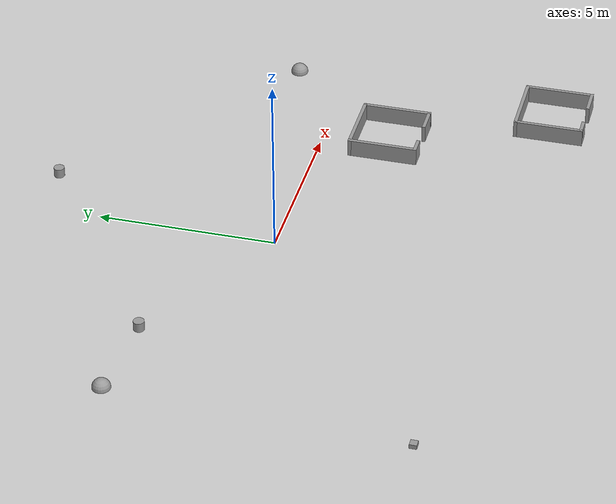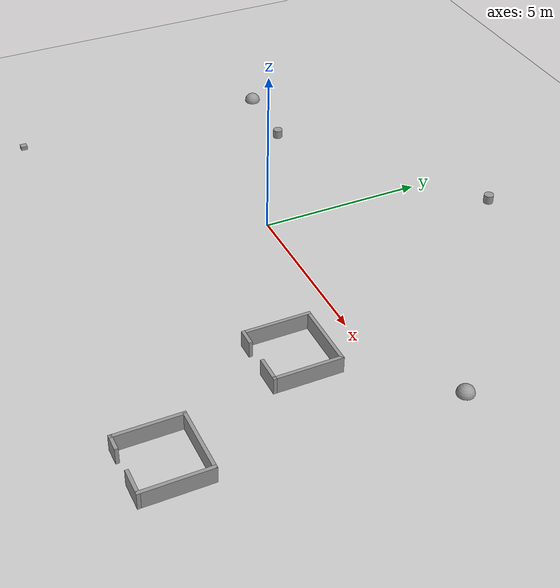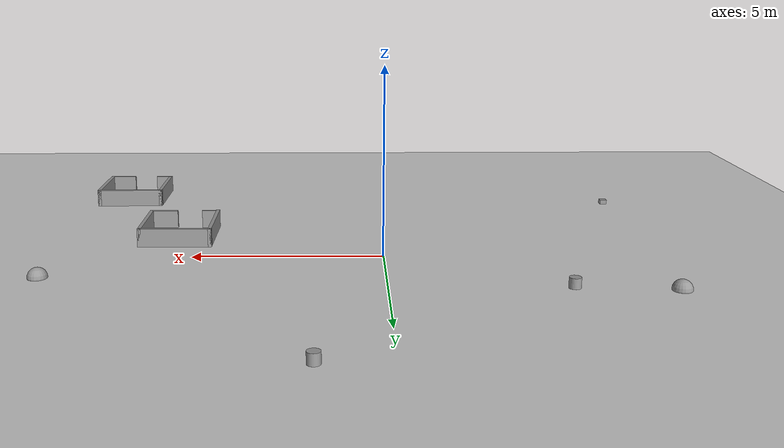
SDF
<sdf version="1.6">
 <world name="default">
  <model name="ground_plane">
   <static>1</static>
   <link name="link">
    <collision name="collision">
     <geometry><plane><normal>0 0 1</normal><size>20 20</size></plane></geometry>
     <surface>
      <contact><collide_bitmask>65535</collide_bitmask></contact>
      <friction><ode><mu>100</mu><mu2>50</mu2></ode></friction>
     </surface>
    </collision>
    <visual name="visual">
     <cast_shadows>0</cast_shadows>
     <geometry><plane><normal>0 0 1</normal><size>20 20</size></plane></geometry>
     <material>
      <script><uri>file://media/materials/scripts/gazebo.material</uri><name>Gazebo/Grey</name></script>
     </material>
    </visual>
   </link>
  </model>
  <model name="shape5">
   <pose>5.6 -1.9 0 0 -0 0</pose>
   <link name="Wall_20">
    <collision name="Wall_20_Collision">
     <geometry><box><size>2 0.1 0.5</size></box></geometry>
     <pose>0 0 0.25 0 -0 0</pose>
    </collision>
    <visual name="Wall_20_Visual">
     <pose>0 0 0.25 0 -0 0</pose>
     <geometry><box><size>2 0.1 0.5</size></box></geometry>
     <material>
      <script><uri>file://media/materials/scripts/gazebo.material</uri><name>Gazebo/Grey</name></script>
      <ambient>1 1 1 1</ambient>
     </material>
     <meta><layer>0</layer></meta>
    </visual>
    <pose>-0 0.95 0 0 -0 0</pose>
   </link>
   <link name="Wall_21">
    <collision name="Wall_21_Collision">
     <geometry><box><size>2 0.1 0.5</size></box></geometry>
     <pose>0 0 0.25 0 -0 0</pose>
    </collision>
    <visual name="Wall_21_Visual">
     <pose>0 0 0.25 0 -0 0</pose>
     <geometry><box><size>2 0.1 0.5</size></box></geometry>
     <material>
      <script><uri>file://media/materials/scripts/gazebo.material</uri><name>Gazebo/Grey</name></script>
      <ambient>1 1 1 1</ambient>
     </material>
     <meta><layer>0</layer></meta>
    </visual>
    <pose>0.95 0 0 0 -0 -1.5708</pose>
   </link>
   <link name="Wall_22">
    <collision name="Wall_22_Collision">
     <geometry><box><size>0.8 0.1 0.5</size></box></geometry>
     <pose>0 0 0.25 0 -0 0</pose>
    </collision>
    <visual name="Wall_22_Visual">
     <pose>0 0 0.25 0 -0 0</pose>
     <geometry><box><size>0.8 0.1 0.5</size></box></geometry>
     <material>
      <script><uri>file://media/materials/scripts/gazebo.material</uri><name>Gazebo/Grey</name></script>
      <ambient>1 1 1 1</ambient>
     </material>
     <meta><layer>0</layer></meta>
    </visual>
    <pose>0.6 -0.95 0 0 -0 3.14159</pose>
   </link>
   <link name="Wall_24">
    <collision name="Wall_24_Collision">
     <geometry><box><size>2 0.1 0.5</size></box></geometry>
     <pose>0 0 0.25 0 -0 0</pose>
    </collision>
    <visual name="Wall_24_Visual">
     <pose>0 0 0.25 0 -0 0</pose>
     <geometry><box><size>2 0.1 0.5</size></box></geometry>
     <material>
      <script><uri>file://media/materials/scripts/gazebo.material</uri><name>Gazebo/Grey</name></script>
      <ambient>1 1 1 1</ambient>
     </material>
     <meta><layer>0</layer></meta>
    </visual>
    <pose>-0.95 0 0 0 -0 -1.5708</pose>
   </link>
   <link name="Wall_25">
    <collision name="Wall_25_Collision">
     <geometry><box><size>0.5 0.1 0.5</size></box></geometry>
     <pose>0 0 0.25 0 -0 0</pose>
    </collision>
    <visual name="Wall_25_Visual">
     <pose>0 0 0.25 0 -0 0</pose>
     <geometry><box><size>0.5 0.1 0.5</size></box></geometry>
     <material>
      <script><uri>file://media/materials/scripts/gazebo.material</uri><name>Gazebo/Grey</name></script>
      <ambient>1 1 1 1</ambient>
     </material>
     <meta><layer>0</layer></meta>
    </visual>
    <pose>-0.75 -0.95 0 0 -0 0</pose>
   </link>
   <static>1</static>
  </model>
  <model name="ball_d=50">
   <link name="link_1">
    <inertial>
     <mass>1</mass>
     <inertia><ixx>0.1</ixx><ixy>0</ixy><ixz>0</ixz><iyy>0.1</iyy><iyz>0</iyz><izz>0.1</izz></inertia>
    </inertial>
    <pose>-6.95 2.65 0 0 -0 0</pose>
    <visual name="visual">
     <geometry><sphere><radius>0.25</radius></sphere></geometry>
     <material>
      <lighting>1</lighting>
      <script><uri>file://media/materials/scripts/gazebo.material</uri><name>Gazebo/Grey</name></script>
      <shader type="vertex"><normal_map>__default__</normal_map></shader>
      <ambient>0.3 0.3 0.3 1</ambient>
      <diffuse>0.7 0.7 0.7 1</diffuse>
      <specular>0.01 0.01 0.01 1</specular>
      <emissive>0 0 0 1</emissive>
     </material>
    </visual>
    <collision name="collision">
     <geometry><sphere><radius>0.25</radius></sphere></geometry>
     <surface>
      <friction>
       <ode><mu>1</mu><mu2>1</mu2><fdir1>0 0 0</fdir1><slip1>0</slip1><slip2>0</slip2></ode>
       <torsional>
        <coefficient>1</coefficient>
        <patch_radius>0</patch_radius>
        <surface_radius>0</surface_radius>
        <use_patch_radius>1</use_patch_radius>
        <ode><slip>0</slip></ode>
       </torsional>
      </friction>
      <bounce><restitution_coefficient>0</restitution_coefficient><threshold>1e+06</threshold></bounce>
      <contact>
       <collide_without_contact>0</collide_without_contact>
       <collide_without_contact_bitmask>1</collide_without_contact_bitmask>
       <collide_bitmask>1</collide_bitmask>
       <ode>
        <soft_cfm>0</soft_cfm>
        <soft_erp>0.2</soft_erp>
        <kp>1e+13</kp>
        <kd>1</kd>
        <max_vel>0.01</max_vel>
        <min_depth>0</min_depth>
       </ode>
       <bullet>
        <split_impulse>1</split_impulse>
        <split_impulse_penetration_threshold>-0.01</split_impulse_penetration_threshold>
        <soft_cfm>0</soft_cfm>
        <soft_erp>0.2</soft_erp>
        <kp>1e+13</kp>
        <kd>1</kd>
       </bullet>
      </contact>
     </surface>
    </collision>
   </link>
   <static>0</static>
  </model>
  <model name="box_d=20">
   <link name="link_2">
    <inertial>
     <mass>1</mass>
     <inertia>
      <ixx>0.166667</ixx>
      <ixy>0</ixy>
      <ixz>0</ixz>
      <iyy>0.166667</iyy>
      <iyz>0</iyz>
      <izz>0.166667</izz>
     </inertia>
    </inertial>
    <pose>-7.2 -5.5 0 0 -0 0</pose>
    <visual name="visual">
     <geometry><box><size>0.2 0.2 0.2</size></box></geometry>
     <material>
      <lighting>1</lighting>
      <script><uri>file://media/materials/scripts/gazebo.material</uri><name>Gazebo/Grey</name></script>
      <shader type="vertex"><normal_map>__default__</normal_map></shader>
      <ambient>0.3 0.3 0.3 1</ambient>
      <diffuse>0.7 0.7 0.7 1</diffuse>
      <specular>0.01 0.01 0.01 1</specular>
      <emissive>0 0 0 1</emissive>
     </material>
    </visual>
    <collision name="collision">
     <geometry><box><size>0.2 0.2 0.2</size></box></geometry>
     <surface>
      <friction>
       <ode><mu>1</mu><mu2>1</mu2><fdir1>0 0 0</fdir1><slip1>0</slip1><slip2>0</slip2></ode>
       <torsional>
        <coefficient>1</coefficient>
        <patch_radius>0</patch_radius>
        <surface_radius>0</surface_radius>
        <use_patch_radius>1</use_patch_radius>
        <ode><slip>0</slip></ode>
       </torsional>
      </friction>
      <bounce><restitution_coefficient>0</restitution_coefficient><threshold>1e+06</threshold></bounce>
      <contact>
       <collide_without_contact>0</collide_without_contact>
       <collide_without_contact_bitmask>1</collide_without_contact_bitmask>
       <collide_bitmask>1</collide_bitmask>
       <ode>
        <soft_cfm>0</soft_cfm>
        <soft_erp>0.2</soft_erp>
        <kp>1e+13</kp>
        <kd>1</kd>
        <max_vel>0.01</max_vel>
        <min_depth>0</min_depth>
       </ode>
       <bullet>
        <split_impulse>1</split_impulse>
        <split_impulse_penetration_threshold>-0.01</split_impulse_penetration_threshold>
        <soft_cfm>0</soft_cfm>
        <soft_erp>0.2</soft_erp>
        <kp>1e+13</kp>
        <kd>1</kd>
       </bullet>
      </contact>
     </surface>
    </collision>
   </link>
   <static>0</static>
  </model>
  <model name="cylinder_d=30">
   <link name="link_0">
    <inertial>
     <mass>1</mass>
     <inertia><ixx>0.145833</ixx><ixy>0</ixy><ixz>0</ixz><iyy>0.145833</iyy><iyz>0</iyz><izz>0.125</izz></inertia>
    </inertial>
    <pose>1.65 6.75 0 0 -0 0</pose>
    <visual name="visual">
     <geometry><cylinder><radius>0.15</radius><length>0.5</length></cylinder></geometry>
     <material>
      <lighting>1</lighting>
      <script><uri>file://media/materials/scripts/gazebo.material</uri><name>Gazebo/Grey</name></script>
      <shader type="vertex"><normal_map>__default__</normal_map></shader>
      <ambient>0.3 0.3 0.3 1</ambient>
      <diffuse>0.7 0.7 0.7 1</diffuse>
      <specular>0.01 0.01 0.01 1</specular>
      <emissive>0 0 0 1</emissive>
     </material>
    </visual>
    <collision name="collision">
     <geometry><cylinder><radius>0.15</radius><length>0.5</length></cylinder></geometry>
     <surface>
      <friction>
       <ode><mu>1</mu><mu2>1</mu2><fdir1>0 0 0</fdir1><slip1>0</slip1><slip2>0</slip2></ode>
       <torsional>
        <coefficient>1</coefficient>
        <patch_radius>0</patch_radius>
        <surface_radius>0</surface_radius>
        <use_patch_radius>1</use_patch_radius>
        <ode><slip>0</slip></ode>
       </torsional>
      </friction>
      <bounce><restitution_coefficient>0</restitution_coefficient><threshold>1e+06</threshold></bounce>
      <contact>
       <collide_without_contact>0</collide_without_contact>
       <collide_without_contact_bitmask>1</collide_without_contact_bitmask>
       <collide_bitmask>1</collide_bitmask>
       <ode>
        <soft_cfm>0</soft_cfm>
        <soft_erp>0.2</soft_erp>
        <kp>1e+13</kp>
        <kd>1</kd>
        <max_vel>0.01</max_vel>
        <min_depth>0</min_depth>
       </ode>
       <bullet>
        <split_impulse>1</split_impulse>
        <split_impulse_penetration_threshold>-0.01</split_impulse_penetration_threshold>
        <soft_cfm>0</soft_cfm>
        <soft_erp>0.2</soft_erp>
        <kp>1e+13</kp>
        <kd>1</kd>
       </bullet>
      </contact>
     </surface>
    </collision>
   </link>
   <static>0</static>
  </model>
  <model name="ball_d=50">
   <link name="link_1">
    <inertial>
     <mass>1</mass>
     <inertia><ixx>0.1</ixx><ixy>0</ixy><ixz>0</ixz><iyy>0.1</iyy><iyz>0</iyz><izz>0.1</izz></inertia>
    </inertial>
    <pose>8.55 1.55 0 0 -0 0</pose>
    <visual name="visual">
     <geometry><sphere><radius>0.25</radius></sphere></geometry>
     <material>
      <lighting>1</lighting>
      <script><uri>file://media/materials/scripts/gazebo.material</uri><name>Gazebo/Grey</name></script>
      <shader type="vertex"><normal_map>__default__</normal_map></shader>
      <ambient>0.3 0.3 0.3 1</ambient>
      <diffuse>0.7 0.7 0.7 1</diffuse>
      <specular>0.01 0.01 0.01 1</specular>
      <emissive>0 0 0 1</emissive>
     </material>
    </visual>
    <collision name="collision">
     <geometry><sphere><radius>0.25</radius></sphere></geometry>
     <surface>
      <friction>
       <ode><mu>1</mu><mu2>1</mu2><fdir1>0 0 0</fdir1><slip1>0</slip1><slip2>0</slip2></ode>
       <torsional>
        <coefficient>1</coefficient>
        <patch_radius>0</patch_radius>
        <surface_radius>0</surface_radius>
        <use_patch_radius>1</use_patch_radius>
        <ode><slip>0</slip></ode>
       </torsional>
      </friction>
      <bounce><restitution_coefficient>0</restitution_coefficient><threshold>1e+06</threshold></bounce>
      <contact>
       <collide_without_contact>0</collide_without_contact>
       <collide_without_contact_bitmask>1</collide_without_contact_bitmask>
       <collide_bitmask>1</collide_bitmask>
       <ode>
        <soft_cfm>0</soft_cfm>
        <soft_erp>0.2</soft_erp>
        <kp>1e+13</kp>
        <kd>1</kd>
        <max_vel>0.01</max_vel>
        <min_depth>0</min_depth>
       </ode>
       <bullet>
        <split_impulse>1</split_impulse>
        <split_impulse_penetration_threshold>-0.01</split_impulse_penetration_threshold>
        <soft_cfm>0</soft_cfm>
        <soft_erp>0.2</soft_erp>
        <kp>1e+13</kp>
        <kd>1</kd>
       </bullet>
      </contact>
     </surface>
    </collision>
   </link>
   <static>0</static>
  </model>
  <model name="cylinder_d=30">
   <link name="link_0">
    <inertial>
     <mass>1</mass>
     <inertia><ixx>0.145833</ixx><ixy>0</ixy><ixz>0</ixz><iyy>0.145833</iyy><iyz>0</iyz><izz>0.125</izz></inertia>
    </inertial>
    <pose>-4.45 2.45 0 0 -0 0</pose>
    <visual name="visual">
     <geometry><cylinder><radius>0.15</radius><length>0.5</length></cylinder></geometry>
     <material>
      <lighting>1</lighting>
      <script><uri>file://media/materials/scripts/gazebo.material</uri><name>Gazebo/Grey</name></script>
      <shader type="vertex"><normal_map>__default__</normal_map></shader>
      <ambient>0.3 0.3 0.3 1</ambient>
      <diffuse>0.7 0.7 0.7 1</diffuse>
      <specular>0.01 0.01 0.01 1</specular>
      <emissive>0 0 0 1</emissive>
     </material>
    </visual>
    <collision name="collision">
     <geometry><cylinder><radius>0.15</radius><length>0.5</length></cylinder></geometry>
     <surface>
      <friction>
       <ode><mu>1</mu><mu2>1</mu2><fdir1>0 0 0</fdir1><slip1>0</slip1><slip2>0</slip2></ode>
       <torsional>
        <coefficient>1</coefficient>
        <patch_radius>0</patch_radius>
        <surface_radius>0</surface_radius>
        <use_patch_radius>1</use_patch_radius>
        <ode><slip>0</slip></ode>
       </torsional>
      </friction>
      <bounce><restitution_coefficient>0</restitution_coefficient><threshold>1e+06</threshold></bounce>
      <contact>
       <collide_without_contact>0</collide_without_contact>
       <collide_without_contact_bitmask>1</collide_without_contact_bitmask>
       <collide_bitmask>1</collide_bitmask>
       <ode>
        <soft_cfm>0</soft_cfm>
        <soft_erp>0.2</soft_erp>
        <kp>1e+13</kp>
        <kd>1</kd>
        <max_vel>0.01</max_vel>
        <min_depth>0</min_depth>
       </ode>
       <bullet>
        <split_impulse>1</split_impulse>
        <split_impulse_penetration_threshold>-0.01</split_impulse_penetration_threshold>
        <soft_cfm>0</soft_cfm>
        <soft_erp>0.2</soft_erp>
        <kp>1e+13</kp>
        <kd>1</kd>
       </bullet>
      </contact>
     </surface>
    </collision>
   </link>
   <static>0</static>
  </model>
  <model name="shape5">
   <pose>7.7 -6.3 0 0 -0 0</pose>
   <link name="Wall_20">
    <collision name="Wall_20_Collision">
     <geometry><box><size>2 0.1 0.5</size></box></geometry>
     <pose>0 0 0.25 0 -0 0</pose>
    </collision>
    <visual name="Wall_20_Visual">
     <pose>0 0 0.25 0 -0 0</pose>
     <geometry><box><size>2 0.1 0.5</size></box></geometry>
     <material>
      <script><uri>file://media/materials/scripts/gazebo.material</uri><name>Gazebo/Grey</name></script>
      <ambient>1 1 1 1</ambient>
     </material>
     <meta><layer>0</layer></meta>
    </visual>
    <pose>-0 0.95 0 0 -0 0</pose>
   </link>
   <link name="Wall_21">
    <collision name="Wall_21_Collision">
     <geometry><box><size>2 0.1 0.5</size></box></geometry>
     <pose>0 0 0.25 0 -0 0</pose>
    </collision>
    <visual name="Wall_21_Visual">
     <pose>0 0 0.25 0 -0 0</pose>
     <geometry><box><size>2 0.1 0.5</size></box></geometry>
     <material>
      <script><uri>file://media/materials/scripts/gazebo.material</uri><name>Gazebo/Grey</name></script>
      <ambient>1 1 1 1</ambient>
     </material>
     <meta><layer>0</layer></meta>
    </visual>
    <pose>0.95 0 0 0 -0 -1.5708</pose>
   </link>
   <link name="Wall_22">
    <collision name="Wall_22_Collision">
     <geometry><box><size>0.8 0.1 0.5</size></box></geometry>
     <pose>0 0 0.25 0 -0 0</pose>
    </collision>
    <visual name="Wall_22_Visual">
     <pose>0 0 0.25 0 -0 0</pose>
     <geometry><box><size>0.8 0.1 0.5</size></box></geometry>
     <material>
      <script><uri>file://media/materials/scripts/gazebo.material</uri><name>Gazebo/Grey</name></script>
      <ambient>1 1 1 1</ambient>
     </material>
     <meta><layer>0</layer></meta>
    </visual>
    <pose>0.6 -0.95 0 0 -0 3.14159</pose>
   </link>
   <link name="Wall_24">
    <collision name="Wall_24_Collision">
     <geometry><box><size>2 0.1 0.5</size></box></geometry>
     <pose>0 0 0.25 0 -0 0</pose>
    </collision>
    <visual name="Wall_24_Visual">
     <pose>0 0 0.25 0 -0 0</pose>
     <geometry><box><size>2 0.1 0.5</size></box></geometry>
     <material>
      <script><uri>file://media/materials/scripts/gazebo.material</uri><name>Gazebo/Grey</name></script>
      <ambient>1 1 1 1</ambient>
     </material>
     <meta><layer>0</layer></meta>
    </visual>
    <pose>-0.95 0 0 0 -0 -1.5708</pose>
   </link>
   <link name="Wall_25">
    <collision name="Wall_25_Collision">
     <geometry><box><size>0.5 0.1 0.5</size></box></geometry>
     <pose>0 0 0.25 0 -0 0</pose>
    </collision>
    <visual name="Wall_25_Visual">
     <pose>0 0 0.25 0 -0 0</pose>
     <geometry><box><size>0.5 0.1 0.5</size></box></geometry>
     <material>
      <script><uri>file://media/materials/scripts/gazebo.material</uri><name>Gazebo/Grey</name></script>
      <ambient>1 1 1 1</ambient>
     </material>
     <meta><layer>0</layer></meta>
    </visual>
    <pose>-0.75 -0.95 0 0 -0 0</pose>
   </link>
   <static>1</static>
  </model>
 </world>
</sdf>
